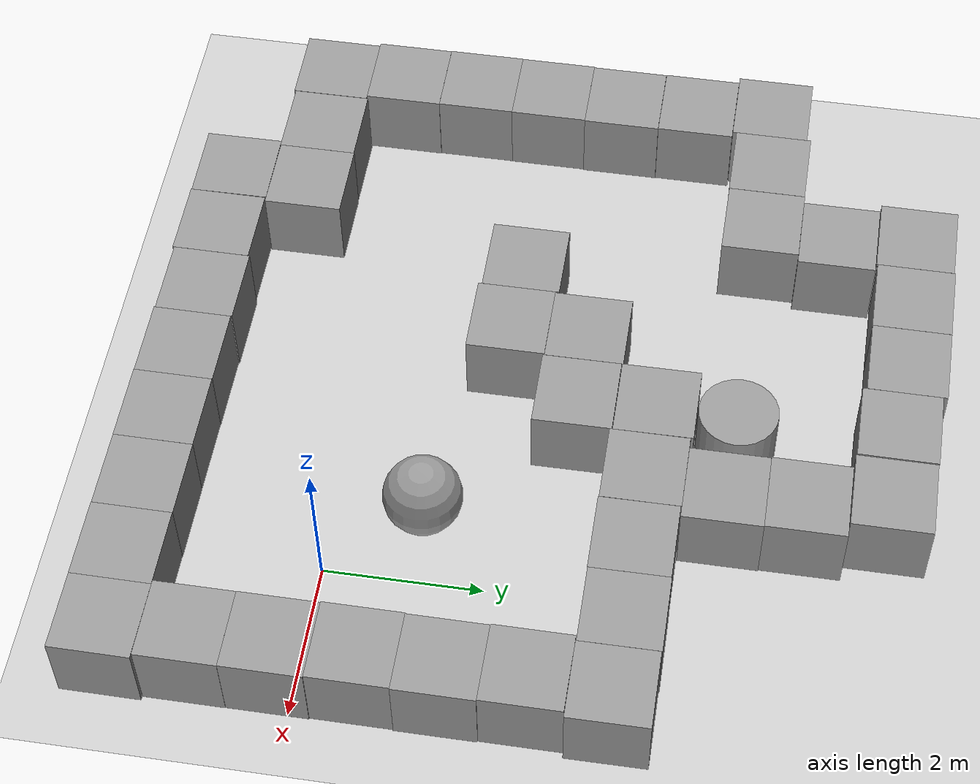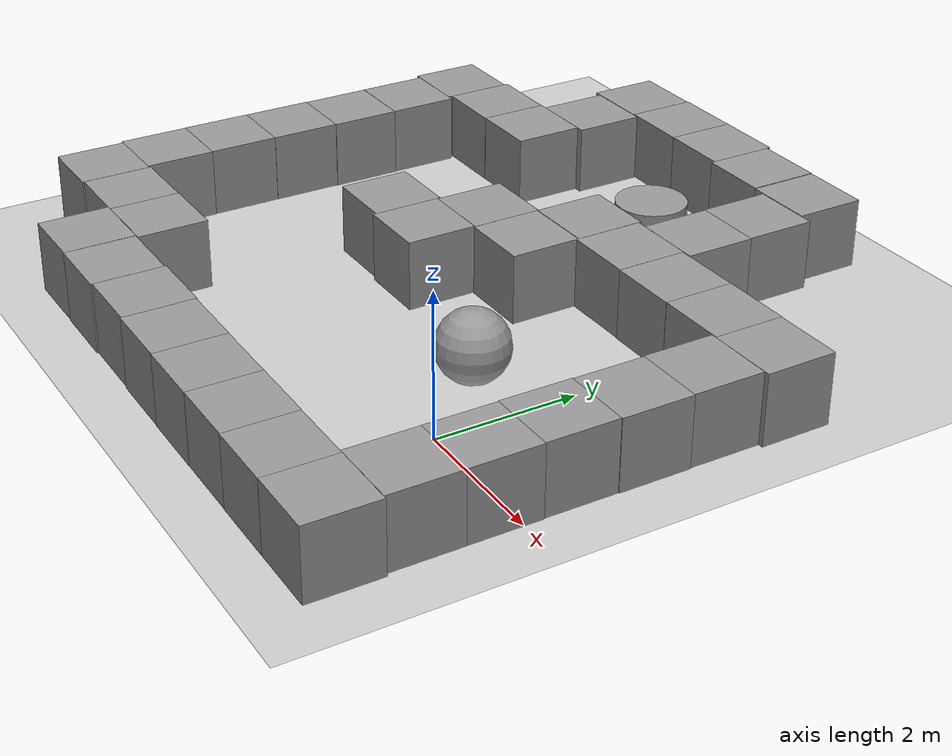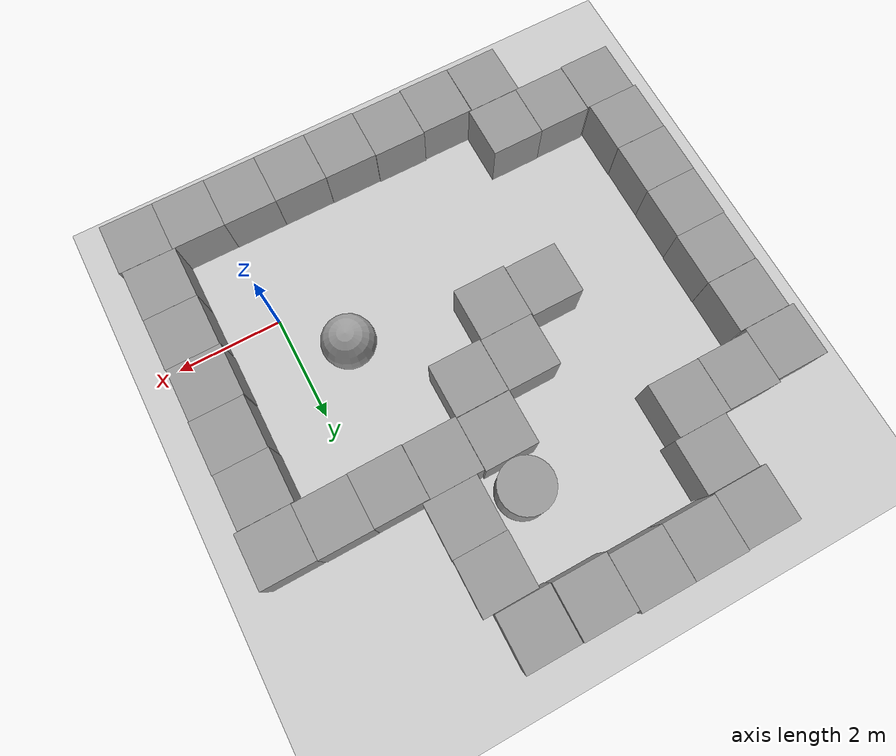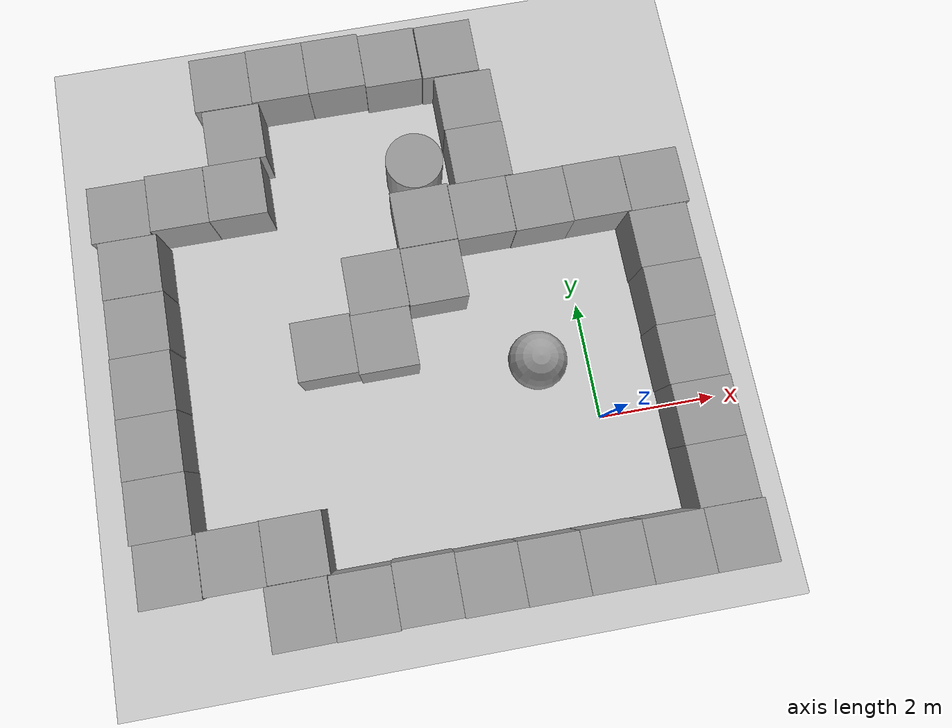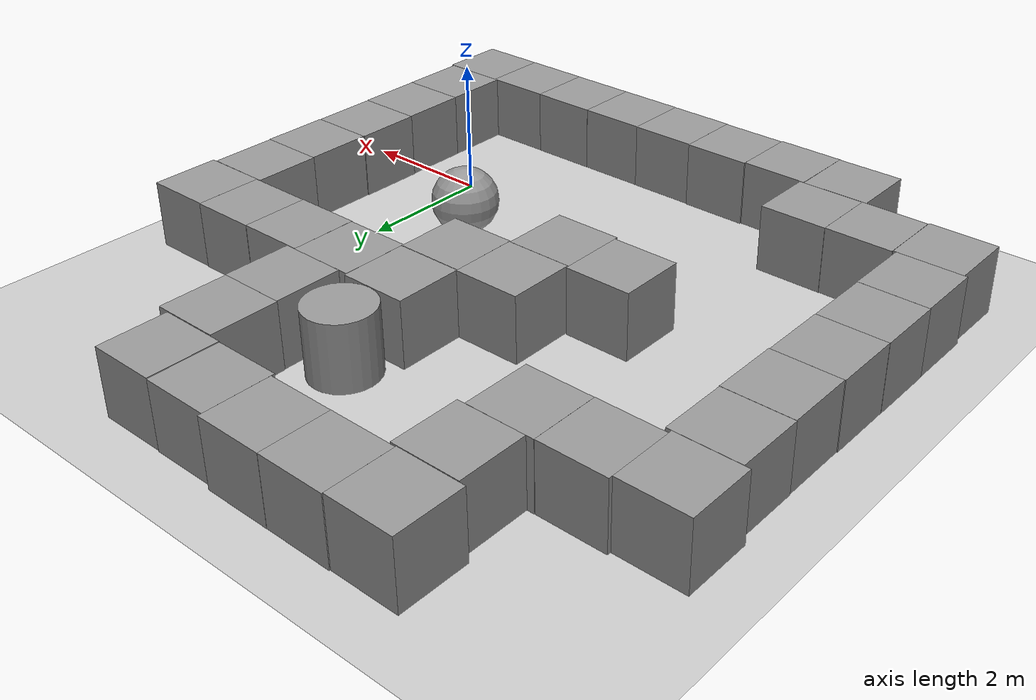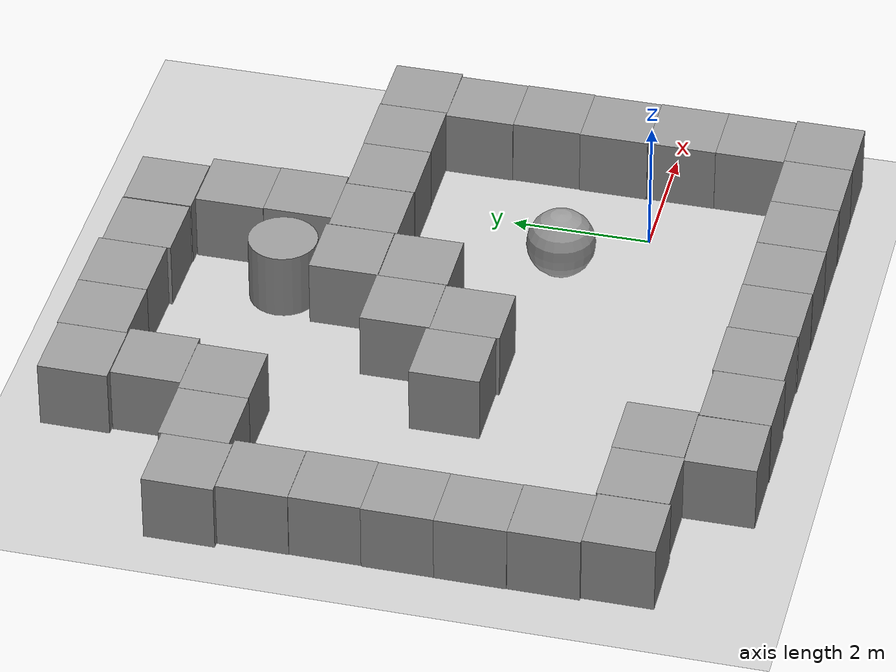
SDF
<sdf version="1.7">
 <world name="default">
  <light name="sun" type="directional">
   <pose>0 0 10 0 -0 0</pose>
   <diffuse>0.8 0.8 0.8 1</diffuse>
   <specular>0.2 0.2 0.2 1</specular>
   <attenuation>
    <range>1000</range>
    <constant>0.9</constant>
    <linear>0.01</linear>
    <quadratic>0.001</quadratic>
   </attenuation>
   <direction>-0.5 0.1 -0.9</direction>
   <spot><inner_angle>0</inner_angle><outer_angle>0</outer_angle><falloff>0</falloff></spot>
  </light>
  <model name="ground_plane">
   <static>1</static>
   <link name="link">
    <collision name="collision">
     <geometry><plane><normal>0 0 1</normal><size>100 100</size></plane></geometry>
     <surface><friction><ode><mu>100</mu><mu2>50</mu2></ode></friction></surface>
    </collision>
    <visual name="visual">
     <cast_shadows>0</cast_shadows>
     <geometry><plane><normal>0 0 1</normal><size>100 100</size></plane></geometry>
     <material>
      <script><uri>file://media/materials/scripts/gazebo.material</uri><name>Gazebo/Grey</name></script>
     </material>
    </visual>
   </link>
  </model>
  <gravity>0 0 -9.8</gravity>
  <magnetic_field>6e-06 2.3e-05 -4.2e-05</magnetic_field>
  <atmosphere type="adiabatic"/>
  <physics type="ode">
   <max_step_size>0.001</max_step_size>
   <real_time_factor>1</real_time_factor>
   <real_time_update_rate>1000</real_time_update_rate>
  </physics>
  <scene><ambient>0.4 0.4 0.4 1</ambient><background>0.7 0.7 0.7 1</background><shadows>1</shadows></scene>
  <spherical_coordinates>
   <surface_model>EARTH_WGS84</surface_model>
   <latitude_deg>0</latitude_deg>
   <longitude_deg>0</longitude_deg>
   <elevation>0</elevation>
   <heading_deg>0</heading_deg>
  </spherical_coordinates>
  <model name="unit_box">
   <pose>1.51839 -0.238951 0.499995 1e-05 -0 -0.001053</pose>
   <link name="link">
    <inertial>
     <mass>1</mass>
     <inertia>
      <ixx>0.166667</ixx>
      <ixy>0</ixy>
      <ixz>0</ixz>
      <iyy>0.166667</iyy>
      <iyz>0</iyz>
      <izz>0.166667</izz>
     </inertia>
    </inertial>
    <collision name="collision"><geometry><box><size>1 1 1</size></box></geometry></collision>
    <visual name="visual">
     <geometry><box><size>1 1 1</size></box></geometry>
     <material>
      <script><name>Gazebo/Grey</name><uri>file://media/materials/scripts/gazebo.material</uri></script>
     </material>
    </visual>
   </link>
  </model>
  <model name="unit_sphere">
   <pose>-0.944955 1.09802 0.5 0 -0 0</pose>
   <link name="link">
    <inertial>
     <mass>1</mass>
     <inertia><ixx>0.1</ixx><ixy>0</ixy><ixz>0</ixz><iyy>0.1</iyy><iyz>0</iyz><izz>0.1</izz></inertia>
    </inertial>
    <collision name="collision"><geometry><sphere><radius>0.5</radius></sphere></geometry></collision>
    <visual name="visual">
     <geometry><sphere><radius>0.5</radius></sphere></geometry>
     <material>
      <script><name>Gazebo/Grey</name><uri>file://media/materials/scripts/gazebo.material</uri></script>
     </material>
    </visual>
   </link>
  </model>
  <audio><device>default</device></audio>
  <model name="unit_box_0">
   <pose>1.50815 0.761094 0.499995 -1e-05 -0 -0.00102</pose>
   <link name="link">
    <inertial>
     <mass>1</mass>
     <inertia>
      <ixx>0.166667</ixx>
      <ixy>0</ixy>
      <ixz>0</ixz>
      <iyy>0.166667</iyy>
      <iyz>0</iyz>
      <izz>0.166667</izz>
     </inertia>
    </inertial>
    <collision name="collision"><geometry><box><size>1 1 1</size></box></geometry></collision>
    <visual name="visual">
     <geometry><box><size>1 1 1</size></box></geometry>
     <material>
      <script><name>Gazebo/Grey</name><uri>file://media/materials/scripts/gazebo.material</uri></script>
     </material>
    </visual>
   </link>
  </model>
  <model name="unit_box_1">
   <pose>1.52021 1.76108 0.499995 1e-05 -0 -0.001017</pose>
   <link name="link">
    <inertial>
     <mass>1</mass>
     <inertia>
      <ixx>0.166667</ixx>
      <ixy>0</ixy>
      <ixz>0</ixz>
      <iyy>0.166667</iyy>
      <iyz>0</iyz>
      <izz>0.166667</izz>
     </inertia>
    </inertial>
    <collision name="collision"><geometry><box><size>1 1 1</size></box></geometry></collision>
    <visual name="visual">
     <geometry><box><size>1 1 1</size></box></geometry>
     <material>
      <script><name>Gazebo/Grey</name><uri>file://media/materials/scripts/gazebo.material</uri></script>
     </material>
    </visual>
   </link>
  </model>
  <model name="unit_box_2">
   <pose>1.50918 2.76109 0.499995 1e-05 -0 -0.001017</pose>
   <link name="link">
    <inertial>
     <mass>1</mass>
     <inertia>
      <ixx>0.166667</ixx>
      <ixy>0</ixy>
      <ixz>0</ixz>
      <iyy>0.166667</iyy>
      <iyz>0</iyz>
      <izz>0.166667</izz>
     </inertia>
    </inertial>
    <collision name="collision"><geometry><box><size>1 1 1</size></box></geometry></collision>
    <visual name="visual">
     <geometry><box><size>1 1 1</size></box></geometry>
     <material>
      <script><name>Gazebo/Grey</name><uri>file://media/materials/scripts/gazebo.material</uri></script>
     </material>
    </visual>
   </link>
  </model>
  <model name="unit_box_3">
   <pose>1.57436 3.76376 0.499995 1e-05 -0 0.004447</pose>
   <link name="link">
    <inertial>
     <mass>1</mass>
     <inertia>
      <ixx>0.166667</ixx>
      <ixy>0</ixy>
      <ixz>0</ixz>
      <iyy>0.166667</iyy>
      <iyz>0</iyz>
      <izz>0.166667</izz>
     </inertia>
    </inertial>
    <collision name="collision"><geometry><box><size>1 1 1</size></box></geometry></collision>
    <visual name="visual">
     <geometry><box><size>1 1 1</size></box></geometry>
     <material>
      <script><name>Gazebo/Grey</name><uri>file://media/materials/scripts/gazebo.material</uri></script>
     </material>
    </visual>
   </link>
  </model>
  <model name="unit_box_4">
   <pose>1.52038 -1.23899 0.499995 1e-05 -0 -0.001119</pose>
   <link name="link">
    <inertial>
     <mass>1</mass>
     <inertia>
      <ixx>0.166667</ixx>
      <ixy>0</ixy>
      <ixz>0</ixz>
      <iyy>0.166667</iyy>
      <iyz>0</iyz>
      <izz>0.166667</izz>
     </inertia>
    </inertial>
    <collision name="collision"><geometry><box><size>1 1 1</size></box></geometry></collision>
    <visual name="visual">
     <geometry><box><size>1 1 1</size></box></geometry>
     <material>
      <script><name>Gazebo/Grey</name><uri>file://media/materials/scripts/gazebo.material</uri></script>
     </material>
    </visual>
   </link>
  </model>
  <model name="unit_box_5">
   <pose>1.56579 -2.24078 0.499995 0 1e-05 -0.004598</pose>
   <link name="link">
    <inertial>
     <mass>1</mass>
     <inertia>
      <ixx>0.166667</ixx>
      <ixy>0</ixy>
      <ixz>0</ixz>
      <iyy>0.166667</iyy>
      <iyz>0</iyz>
      <izz>0.166667</izz>
     </inertia>
    </inertial>
    <collision name="collision"><geometry><box><size>1 1 1</size></box></geometry></collision>
    <visual name="visual">
     <geometry><box><size>1 1 1</size></box></geometry>
     <material>
      <script><name>Gazebo/Grey</name><uri>file://media/materials/scripts/gazebo.material</uri></script>
     </material>
    </visual>
   </link>
  </model>
  <model name="unit_box_6">
   <pose>0.565789 -2.23762 0.499995 0 1e-05 -0.0046</pose>
   <link name="link">
    <inertial>
     <mass>1</mass>
     <inertia>
      <ixx>0.166667</ixx>
      <ixy>0</ixy>
      <ixz>0</ixz>
      <iyy>0.166667</iyy>
      <iyz>0</iyz>
      <izz>0.166667</izz>
     </inertia>
    </inertial>
    <collision name="collision"><geometry><box><size>1 1 1</size></box></geometry></collision>
    <visual name="visual">
     <geometry><box><size>1 1 1</size></box></geometry>
     <material>
      <script><name>Gazebo/Grey</name><uri>file://media/materials/scripts/gazebo.material</uri></script>
     </material>
    </visual>
   </link>
  </model>
  <model name="unit_box_7">
   <pose>-0.434194 -2.2287 0.499995 1e-05 -0 -0.004599</pose>
   <link name="link">
    <inertial>
     <mass>1</mass>
     <inertia>
      <ixx>0.166667</ixx>
      <ixy>0</ixy>
      <ixz>0</ixz>
      <iyy>0.166667</iyy>
      <iyz>0</iyz>
      <izz>0.166667</izz>
     </inertia>
    </inertial>
    <collision name="collision"><geometry><box><size>1 1 1</size></box></geometry></collision>
    <visual name="visual">
     <geometry><box><size>1 1 1</size></box></geometry>
     <material>
      <script><name>Gazebo/Grey</name><uri>file://media/materials/scripts/gazebo.material</uri></script>
     </material>
    </visual>
   </link>
  </model>
  <model name="unit_box_8">
   <pose>-1.43433 -2.2256 0.5 0 0 -0.004333</pose>
   <link name="link">
    <inertial>
     <mass>1</mass>
     <inertia>
      <ixx>0.166667</ixx>
      <ixy>0</ixy>
      <ixz>0</ixz>
      <iyy>0.166667</iyy>
      <iyz>0</iyz>
      <izz>0.166667</izz>
     </inertia>
    </inertial>
    <collision name="collision"><geometry><box><size>1 1 1</size></box></geometry></collision>
    <visual name="visual">
     <geometry><box><size>1 1 1</size></box></geometry>
     <material>
      <script><name>Gazebo/Grey</name><uri>file://media/materials/scripts/gazebo.material</uri></script>
     </material>
    </visual>
   </link>
  </model>
  <model name="unit_box_9">
   <pose>-2.43431 -2.21647 0.5 -0 -0 -0.004327</pose>
   <link name="link">
    <inertial>
     <mass>1</mass>
     <inertia>
      <ixx>0.166667</ixx>
      <ixy>0</ixy>
      <ixz>0</ixz>
      <iyy>0.166667</iyy>
      <iyz>0</iyz>
      <izz>0.166667</izz>
     </inertia>
    </inertial>
    <collision name="collision"><geometry><box><size>1 1 1</size></box></geometry></collision>
    <visual name="visual">
     <geometry><box><size>1 1 1</size></box></geometry>
     <material>
      <script><name>Gazebo/Grey</name><uri>file://media/materials/scripts/gazebo.material</uri></script>
     </material>
    </visual>
   </link>
  </model>
  <model name="unit_box_10">
   <pose>-3.4343 -2.19781 0.5 0 0 -0.004209</pose>
   <link name="link">
    <inertial>
     <mass>1</mass>
     <inertia>
      <ixx>0.166667</ixx>
      <ixy>0</ixy>
      <ixz>0</ixz>
      <iyy>0.166667</iyy>
      <iyz>0</iyz>
      <izz>0.166667</izz>
     </inertia>
    </inertial>
    <collision name="collision"><geometry><box><size>1 1 1</size></box></geometry></collision>
    <visual name="visual">
     <geometry><box><size>1 1 1</size></box></geometry>
     <material>
      <script><name>Gazebo/Grey</name><uri>file://media/materials/scripts/gazebo.material</uri></script>
     </material>
    </visual>
   </link>
  </model>
  <model name="unit_box_11">
   <pose>-4.43473 -2.21542 0.499995 1e-05 -0 -0.003491</pose>
   <link name="link">
    <inertial>
     <mass>1</mass>
     <inertia>
      <ixx>0.166667</ixx>
      <ixy>0</ixy>
      <ixz>0</ixz>
      <iyy>0.166667</iyy>
      <iyz>0</iyz>
      <izz>0.166667</izz>
     </inertia>
    </inertial>
    <collision name="collision"><geometry><box><size>1 1 1</size></box></geometry></collision>
    <visual name="visual">
     <geometry><box><size>1 1 1</size></box></geometry>
     <material>
      <script><name>Gazebo/Grey</name><uri>file://media/materials/scripts/gazebo.material</uri></script>
     </material>
    </visual>
   </link>
  </model>
  <model name="unit_box_12">
   <pose>-5.43888 -2.20757 0.499995 -0 -1e-05 0.004858</pose>
   <link name="link">
    <inertial>
     <mass>1</mass>
     <inertia>
      <ixx>0.166667</ixx>
      <ixy>0</ixy>
      <ixz>0</ixz>
      <iyy>0.166667</iyy>
      <iyz>0</iyz>
      <izz>0.166667</izz>
     </inertia>
    </inertial>
    <collision name="collision"><geometry><box><size>1 1 1</size></box></geometry></collision>
    <visual name="visual">
     <geometry><box><size>1 1 1</size></box></geometry>
     <material>
      <script><name>Gazebo/Grey</name><uri>file://media/materials/scripts/gazebo.material</uri></script>
     </material>
    </visual>
   </link>
  </model>
  <model name="unit_box_13">
   <pose>-5.3787 -1.20339 0.499995 0 -1e-05 -0.000222</pose>
   <link name="link">
    <inertial>
     <mass>1</mass>
     <inertia>
      <ixx>0.166667</ixx>
      <ixy>0</ixy>
      <ixz>0</ixz>
      <iyy>0.166667</iyy>
      <iyz>0</iyz>
      <izz>0.166667</izz>
     </inertia>
    </inertial>
    <collision name="collision"><geometry><box><size>1 1 1</size></box></geometry></collision>
    <visual name="visual">
     <geometry><box><size>1 1 1</size></box></geometry>
     <material>
      <script><name>Gazebo/Grey</name><uri>file://media/materials/scripts/gazebo.material</uri></script>
     </material>
    </visual>
   </link>
  </model>
  <model name="unit_box_14">
   <pose>-6.37908 -1.20996 0.499995 0 -1e-05 0.00054</pose>
   <link name="link">
    <inertial>
     <mass>1</mass>
     <inertia>
      <ixx>0.166667</ixx>
      <ixy>0</ixy>
      <ixz>0</ixz>
      <iyy>0.166667</iyy>
      <iyz>0</iyz>
      <izz>0.166667</izz>
     </inertia>
    </inertial>
    <collision name="collision"><geometry><box><size>1 1 1</size></box></geometry></collision>
    <visual name="visual">
     <geometry><box><size>1 1 1</size></box></geometry>
     <material>
      <script><name>Gazebo/Grey</name><uri>file://media/materials/scripts/gazebo.material</uri></script>
     </material>
    </visual>
   </link>
  </model>
  <model name="unit_box_15">
   <pose>-7.38246 -1.23219 0.499995 -1e-05 0 0.000178</pose>
   <link name="link">
    <inertial>
     <mass>1</mass>
     <inertia>
      <ixx>0.166667</ixx>
      <ixy>0</ixy>
      <ixz>0</ixz>
      <iyy>0.166667</iyy>
      <iyz>0</iyz>
      <izz>0.166667</izz>
     </inertia>
    </inertial>
    <collision name="collision"><geometry><box><size>1 1 1</size></box></geometry></collision>
    <visual name="visual">
     <geometry><box><size>1 1 1</size></box></geometry>
     <material>
      <script><name>Gazebo/Grey</name><uri>file://media/materials/scripts/gazebo.material</uri></script>
     </material>
    </visual>
   </link>
  </model>
  <model name="unit_box_16">
   <pose>0.573898 3.76721 0.499995 1e-05 -0 0.005265</pose>
   <link name="link">
    <inertial>
     <mass>1</mass>
     <inertia>
      <ixx>0.166667</ixx>
      <ixy>0</ixy>
      <ixz>0</ixz>
      <iyy>0.166667</iyy>
      <iyz>0</iyz>
      <izz>0.166667</izz>
     </inertia>
    </inertial>
    <collision name="collision"><geometry><box><size>1 1 1</size></box></geometry></collision>
    <visual name="visual">
     <geometry><box><size>1 1 1</size></box></geometry>
     <material>
      <script><name>Gazebo/Grey</name><uri>file://media/materials/scripts/gazebo.material</uri></script>
     </material>
    </visual>
   </link>
  </model>
  <model name="unit_box_17">
   <pose>-0.426122 3.75739 0.499995 -0 -1e-05 0.005251</pose>
   <link name="link">
    <inertial>
     <mass>1</mass>
     <inertia>
      <ixx>0.166667</ixx>
      <ixy>0</ixy>
      <ixz>0</ixz>
      <iyy>0.166667</iyy>
      <iyz>0</iyz>
      <izz>0.166667</izz>
     </inertia>
    </inertial>
    <collision name="collision"><geometry><box><size>1 1 1</size></box></geometry></collision>
    <visual name="visual">
     <geometry><box><size>1 1 1</size></box></geometry>
     <material>
      <script><name>Gazebo/Grey</name><uri>file://media/materials/scripts/gazebo.material</uri></script>
     </material>
    </visual>
   </link>
  </model>
  <model name="unit_box_18">
   <pose>-1.42773 3.76384 0.499995 0 1e-05 0.002166</pose>
   <link name="link">
    <inertial>
     <mass>1</mass>
     <inertia>
      <ixx>0.166667</ixx>
      <ixy>0</ixy>
      <ixz>0</ixz>
      <iyy>0.166667</iyy>
      <iyz>0</iyz>
      <izz>0.166667</izz>
     </inertia>
    </inertial>
    <collision name="collision"><geometry><box><size>1 1 1</size></box></geometry></collision>
    <visual name="visual">
     <geometry><box><size>1 1 1</size></box></geometry>
     <material>
      <script><name>Gazebo/Grey</name><uri>file://media/materials/scripts/gazebo.material</uri></script>
     </material>
    </visual>
   </link>
  </model>
  <model name="unit_box_19">
   <pose>-2.42968 3.79663 0.499995 -0 -1e-05 0.005884</pose>
   <link name="link">
    <inertial>
     <mass>1</mass>
     <inertia>
      <ixx>0.166667</ixx>
      <ixy>0</ixy>
      <ixz>0</ixz>
      <iyy>0.166667</iyy>
      <iyz>0</iyz>
      <izz>0.166667</izz>
     </inertia>
    </inertial>
    <collision name="collision"><geometry><box><size>1 1 1</size></box></geometry></collision>
    <visual name="visual">
     <geometry><box><size>1 1 1</size></box></geometry>
     <material>
      <script><name>Gazebo/Grey</name><uri>file://media/materials/scripts/gazebo.material</uri></script>
     </material>
    </visual>
   </link>
  </model>
  <model name="unit_box_20">
   <pose>-2.42393 2.78972 0.499995 0 1e-05 0.005777</pose>
   <link name="link">
    <inertial>
     <mass>1</mass>
     <inertia>
      <ixx>0.166667</ixx>
      <ixy>0</ixy>
      <ixz>0</ixz>
      <iyy>0.166667</iyy>
      <iyz>0</iyz>
      <izz>0.166667</izz>
     </inertia>
    </inertial>
    <collision name="collision"><geometry><box><size>1 1 1</size></box></geometry></collision>
    <visual name="visual">
     <geometry><box><size>1 1 1</size></box></geometry>
     <material>
      <script><name>Gazebo/Grey</name><uri>file://media/materials/scripts/gazebo.material</uri></script>
     </material>
    </visual>
   </link>
  </model>
  <model name="unit_box_21">
   <pose>-3.42497 2.80446 0.499995 0 1e-05 0.003842</pose>
   <link name="link">
    <inertial>
     <mass>1</mass>
     <inertia>
      <ixx>0.166667</ixx>
      <ixy>0</ixy>
      <ixz>0</ixz>
      <iyy>0.166667</iyy>
      <iyz>0</iyz>
      <izz>0.166667</izz>
     </inertia>
    </inertial>
    <collision name="collision"><geometry><box><size>1 1 1</size></box></geometry></collision>
    <visual name="visual">
     <geometry><box><size>1 1 1</size></box></geometry>
     <material>
      <script><name>Gazebo/Grey</name><uri>file://media/materials/scripts/gazebo.material</uri></script>
     </material>
    </visual>
   </link>
  </model>
  <model name="unit_box_22">
   <pose>-3.4368 1.80342 0.499995 0 1e-05 0.001814</pose>
   <link name="link">
    <inertial>
     <mass>1</mass>
     <inertia>
      <ixx>0.166667</ixx>
      <ixy>0</ixy>
      <ixz>0</ixz>
      <iyy>0.166667</iyy>
      <iyz>0</iyz>
      <izz>0.166667</izz>
     </inertia>
    </inertial>
    <collision name="collision"><geometry><box><size>1 1 1</size></box></geometry></collision>
    <visual name="visual">
     <geometry><box><size>1 1 1</size></box></geometry>
     <material>
      <script><name>Gazebo/Grey</name><uri>file://media/materials/scripts/gazebo.material</uri></script>
     </material>
    </visual>
   </link>
  </model>
  <model name="unit_box_23">
   <pose>-4.43708 1.84997 0.499995 -1e-05 0 0.00142</pose>
   <link name="link">
    <inertial>
     <mass>1</mass>
     <inertia>
      <ixx>0.166667</ixx>
      <ixy>0</ixy>
      <ixz>0</ixz>
      <iyy>0.166667</iyy>
      <iyz>0</iyz>
      <izz>0.166667</izz>
     </inertia>
    </inertial>
    <collision name="collision"><geometry><box><size>1 1 1</size></box></geometry></collision>
    <visual name="visual">
     <geometry><box><size>1 1 1</size></box></geometry>
     <material>
      <script><name>Gazebo/Grey</name><uri>file://media/materials/scripts/gazebo.material</uri></script>
     </material>
    </visual>
   </link>
  </model>
  <model name="unit_box_24">
   <pose>-7.42785 -0.232186 0.5 0 -0 0.000146</pose>
   <link name="link">
    <inertial>
     <mass>1</mass>
     <inertia>
      <ixx>0.166667</ixx>
      <ixy>0</ixy>
      <ixz>0</ixz>
      <iyy>0.166667</iyy>
      <iyz>0</iyz>
      <izz>0.166667</izz>
     </inertia>
    </inertial>
    <collision name="collision"><geometry><box><size>1 1 1</size></box></geometry></collision>
    <visual name="visual">
     <geometry><box><size>1 1 1</size></box></geometry>
     <material>
      <script><name>Gazebo/Grey</name><uri>file://media/materials/scripts/gazebo.material</uri></script>
     </material>
    </visual>
   </link>
  </model>
  <model name="unit_box_25">
   <pose>-7.4346 0.768217 0.499995 0 -1e-05 0.000315</pose>
   <link name="link">
    <inertial>
     <mass>1</mass>
     <inertia>
      <ixx>0.166667</ixx>
      <ixy>0</ixy>
      <ixz>0</ixz>
      <iyy>0.166667</iyy>
      <iyz>0</iyz>
      <izz>0.166667</izz>
     </inertia>
    </inertial>
    <collision name="collision"><geometry><box><size>1 1 1</size></box></geometry></collision>
    <visual name="visual">
     <geometry><box><size>1 1 1</size></box></geometry>
     <material>
      <script><name>Gazebo/Grey</name><uri>file://media/materials/scripts/gazebo.material</uri></script>
     </material>
    </visual>
   </link>
  </model>
  <model name="unit_box_26">
   <pose>-7.43152 1.76823 0.499995 0 1e-05 0.000334</pose>
   <link name="link">
    <inertial>
     <mass>1</mass>
     <inertia>
      <ixx>0.166667</ixx>
      <ixy>0</ixy>
      <ixz>0</ixz>
      <iyy>0.166667</iyy>
      <iyz>0</iyz>
      <izz>0.166667</izz>
     </inertia>
    </inertial>
    <collision name="collision"><geometry><box><size>1 1 1</size></box></geometry></collision>
    <visual name="visual">
     <geometry><box><size>1 1 1</size></box></geometry>
     <material>
      <script><name>Gazebo/Grey</name><uri>file://media/materials/scripts/gazebo.material</uri></script>
     </material>
    </visual>
   </link>
  </model>
  <model name="unit_box_27">
   <pose>-7.42066 2.76834 0.499995 1e-05 -0 0.00034</pose>
   <link name="link">
    <inertial>
     <mass>1</mass>
     <inertia>
      <ixx>0.166667</ixx>
      <ixy>0</ixy>
      <ixz>0</ixz>
      <iyy>0.166667</iyy>
      <iyz>0</iyz>
      <izz>0.166667</izz>
     </inertia>
    </inertial>
    <collision name="collision"><geometry><box><size>1 1 1</size></box></geometry></collision>
    <visual name="visual">
     <geometry><box><size>1 1 1</size></box></geometry>
     <material>
      <script><name>Gazebo/Grey</name><uri>file://media/materials/scripts/gazebo.material</uri></script>
     </material>
    </visual>
   </link>
  </model>
  <model name="unit_box_28">
   <pose>-7.42707 3.77072 0.499995 0 -1e-05 -0.000835</pose>
   <link name="link">
    <inertial>
     <mass>1</mass>
     <inertia>
      <ixx>0.166667</ixx>
      <ixy>0</ixy>
      <ixz>0</ixz>
      <iyy>0.166667</iyy>
      <iyz>0</iyz>
      <izz>0.166667</izz>
     </inertia>
    </inertial>
    <collision name="collision"><geometry><box><size>1 1 1</size></box></geometry></collision>
    <visual name="visual">
     <geometry><box><size>1 1 1</size></box></geometry>
     <material>
      <script><name>Gazebo/Grey</name><uri>file://media/materials/scripts/gazebo.material</uri></script>
     </material>
    </visual>
   </link>
  </model>
  <model name="unit_box_29">
   <pose>-7.51274 4.77403 0.499995 0 -1e-05 -0.002319</pose>
   <link name="link">
    <inertial>
     <mass>1</mass>
     <inertia>
      <ixx>0.166667</ixx>
      <ixy>0</ixy>
      <ixz>0</ixz>
      <iyy>0.166667</iyy>
      <iyz>0</iyz>
      <izz>0.166667</izz>
     </inertia>
    </inertial>
    <collision name="collision"><geometry><box><size>1 1 1</size></box></geometry></collision>
    <visual name="visual">
     <geometry><box><size>1 1 1</size></box></geometry>
     <material>
      <script><name>Gazebo/Grey</name><uri>file://media/materials/scripts/gazebo.material</uri></script>
     </material>
    </visual>
   </link>
  </model>
  <model name="unit_box_30">
   <pose>-6.51257 4.82451 0.499995 -0 1e-05 -0.002396</pose>
   <link name="link">
    <inertial>
     <mass>1</mass>
     <inertia>
      <ixx>0.166667</ixx>
      <ixy>0</ixy>
      <ixz>0</ixz>
      <iyy>0.166667</iyy>
      <iyz>0</iyz>
      <izz>0.166667</izz>
     </inertia>
    </inertial>
    <collision name="collision"><geometry><box><size>1 1 1</size></box></geometry></collision>
    <visual name="visual">
     <geometry><box><size>1 1 1</size></box></geometry>
     <material>
      <script><name>Gazebo/Grey</name><uri>file://media/materials/scripts/gazebo.material</uri></script>
     </material>
    </visual>
   </link>
  </model>
  <model name="unit_box_31">
   <pose>-5.51176 4.82644 0.499995 1e-05 0 -0.002541</pose>
   <link name="link">
    <inertial>
     <mass>1</mass>
     <inertia>
      <ixx>0.166667</ixx>
      <ixy>0</ixy>
      <ixz>0</ixz>
      <iyy>0.166667</iyy>
      <iyz>0</iyz>
      <izz>0.166667</izz>
     </inertia>
    </inertial>
    <collision name="collision"><geometry><box><size>1 1 1</size></box></geometry></collision>
    <visual name="visual">
     <geometry><box><size>1 1 1</size></box></geometry>
     <material>
      <script><name>Gazebo/Grey</name><uri>file://media/materials/scripts/gazebo.material</uri></script>
     </material>
    </visual>
   </link>
  </model>
  <model name="unit_cylinder">
   <pose>-2.40737 4.80641 0.499994 -4e-06 -3e-06 -0.006828</pose>
   <link name="link">
    <inertial>
     <mass>1</mass>
     <inertia><ixx>0.145833</ixx><ixy>0</ixy><ixz>0</ixz><iyy>0.145833</iyy><iyz>0</iyz><izz>0.125</izz></inertia>
    </inertial>
    <collision name="collision">
     <geometry><cylinder><radius>0.5</radius><length>1</length></cylinder></geometry>
    </collision>
    <visual name="visual">
     <geometry><cylinder><radius>0.5</radius><length>1</length></cylinder></geometry>
     <material>
      <script><name>Gazebo/Grey</name><uri>file://media/materials/scripts/gazebo.material</uri></script>
     </material>
    </visual>
   </link>
  </model>
  <model name="unit_box_32">
   <pose>-5.40163 5.82728 0.499995 0 -1e-05 -0.000335</pose>
   <link name="link">
    <inertial>
     <mass>1</mass>
     <inertia>
      <ixx>0.166667</ixx>
      <ixy>0</ixy>
      <ixz>0</ixz>
      <iyy>0.166667</iyy>
      <iyz>0</iyz>
      <izz>0.166667</izz>
     </inertia>
    </inertial>
    <collision name="collision"><geometry><box><size>1 1 1</size></box></geometry></collision>
    <visual name="visual">
     <geometry><box><size>1 1 1</size></box></geometry>
     <material>
      <script><name>Gazebo/Grey</name><uri>file://media/materials/scripts/gazebo.material</uri></script>
     </material>
    </visual>
   </link>
  </model>
  <model name="unit_box_33">
   <pose>-1.2884 4.76456 0.499995 0 1e-05 0.001098</pose>
   <link name="link">
    <inertial>
     <mass>1</mass>
     <inertia>
      <ixx>0.166667</ixx>
      <ixy>0</ixy>
      <ixz>0</ixz>
      <iyy>0.166667</iyy>
      <iyz>0</iyz>
      <izz>0.166667</izz>
     </inertia>
    </inertial>
    <collision name="collision"><geometry><box><size>1 1 1</size></box></geometry></collision>
    <visual name="visual">
     <geometry><box><size>1 1 1</size></box></geometry>
     <material>
      <script><name>Gazebo/Grey</name><uri>file://media/materials/scripts/gazebo.material</uri></script>
     </material>
    </visual>
   </link>
  </model>
  <model name="unit_box_34">
   <pose>-1.30006 5.7647 0.499995 1e-05 -0 0.000812</pose>
   <link name="link">
    <inertial>
     <mass>1</mass>
     <inertia>
      <ixx>0.166667</ixx>
      <ixy>0</ixy>
      <ixz>0</ixz>
      <iyy>0.166667</iyy>
      <iyz>0</iyz>
      <izz>0.166667</izz>
     </inertia>
    </inertial>
    <collision name="collision"><geometry><box><size>1 1 1</size></box></geometry></collision>
    <visual name="visual">
     <geometry><box><size>1 1 1</size></box></geometry>
     <material>
      <script><name>Gazebo/Grey</name><uri>file://media/materials/scripts/gazebo.material</uri></script>
     </material>
    </visual>
   </link>
  </model>
  <model name="unit_box_35">
   <pose>-1.48726 6.77694 0.499995 1e-05 0 -0.001138</pose>
   <link name="link">
    <inertial>
     <mass>1</mass>
     <inertia>
      <ixx>0.166667</ixx>
      <ixy>0</ixy>
      <ixz>0</ixz>
      <iyy>0.166667</iyy>
      <iyz>0</iyz>
      <izz>0.166667</izz>
     </inertia>
    </inertial>
    <collision name="collision"><geometry><box><size>1 1 1</size></box></geometry></collision>
    <visual name="visual">
     <geometry><box><size>1 1 1</size></box></geometry>
     <material>
      <script><name>Gazebo/Grey</name><uri>file://media/materials/scripts/gazebo.material</uri></script>
     </material>
    </visual>
   </link>
  </model>
  <model name="unit_box_36">
   <pose>-5.50412 6.83713 0.499995 -0 1e-05 -0.004025</pose>
   <link name="link">
    <inertial>
     <mass>1</mass>
     <inertia>
      <ixx>0.166667</ixx>
      <ixy>0</ixy>
      <ixz>0</ixz>
      <iyy>0.166667</iyy>
      <iyz>0</iyz>
      <izz>0.166667</izz>
     </inertia>
    </inertial>
    <collision name="collision"><geometry><box><size>1 1 1</size></box></geometry></collision>
    <visual name="visual">
     <geometry><box><size>1 1 1</size></box></geometry>
     <material>
      <script><name>Gazebo/Grey</name><uri>file://media/materials/scripts/gazebo.material</uri></script>
     </material>
    </visual>
   </link>
  </model>
  <model name="unit_box_37">
   <pose>-4.50389 6.84751 0.499995 -1e-05 -0 -0.003984</pose>
   <link name="link">
    <inertial>
     <mass>1</mass>
     <inertia>
      <ixx>0.166667</ixx>
      <ixy>0</ixy>
      <ixz>0</ixz>
      <iyy>0.166667</iyy>
      <iyz>0</iyz>
      <izz>0.166667</izz>
     </inertia>
    </inertial>
    <collision name="collision"><geometry><box><size>1 1 1</size></box></geometry></collision>
    <visual name="visual">
     <geometry><box><size>1 1 1</size></box></geometry>
     <material>
      <script><name>Gazebo/Grey</name><uri>file://media/materials/scripts/gazebo.material</uri></script>
     </material>
    </visual>
   </link>
  </model>
  <model name="unit_box_38">
   <pose>-3.50338 6.84524 0.5 0 0 -0.003843</pose>
   <link name="link">
    <inertial>
     <mass>1</mass>
     <inertia>
      <ixx>0.166667</ixx>
      <ixy>0</ixy>
      <ixz>0</ixz>
      <iyy>0.166667</iyy>
      <iyz>0</iyz>
      <izz>0.166667</izz>
     </inertia>
    </inertial>
    <collision name="collision"><geometry><box><size>1 1 1</size></box></geometry></collision>
    <visual name="visual">
     <geometry><box><size>1 1 1</size></box></geometry>
     <material>
      <script><name>Gazebo/Grey</name><uri>file://media/materials/scripts/gazebo.material</uri></script>
     </material>
    </visual>
   </link>
  </model>
  <model name="unit_box_39">
   <pose>-2.5031 6.7894 0.499995 -0 -1e-05 -0.002888</pose>
   <link name="link">
    <inertial>
     <mass>1</mass>
     <inertia>
      <ixx>0.166667</ixx>
      <ixy>0</ixy>
      <ixz>0</ixz>
      <iyy>0.166667</iyy>
      <iyz>0</iyz>
      <izz>0.166667</izz>
     </inertia>
    </inertial>
    <collision name="collision"><geometry><box><size>1 1 1</size></box></geometry></collision>
    <visual name="visual">
     <geometry><box><size>1 1 1</size></box></geometry>
     <material>
      <script><name>Gazebo/Grey</name><uri>file://media/materials/scripts/gazebo.material</uri></script>
     </material>
    </visual>
   </link>
  </model>
 </world>
</sdf>
